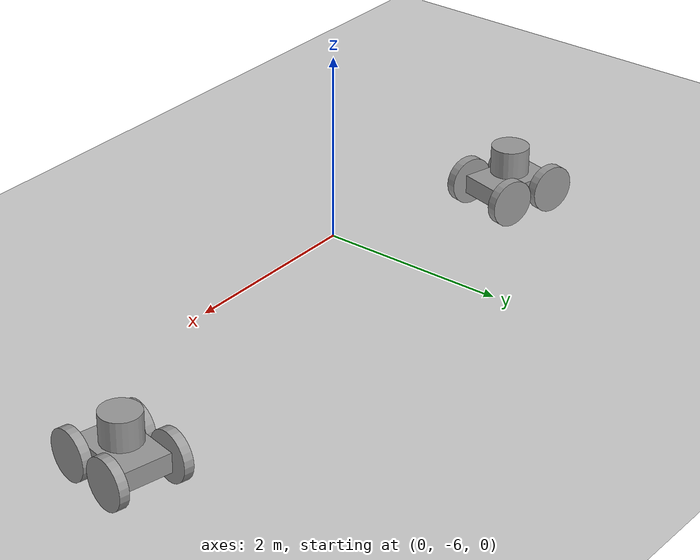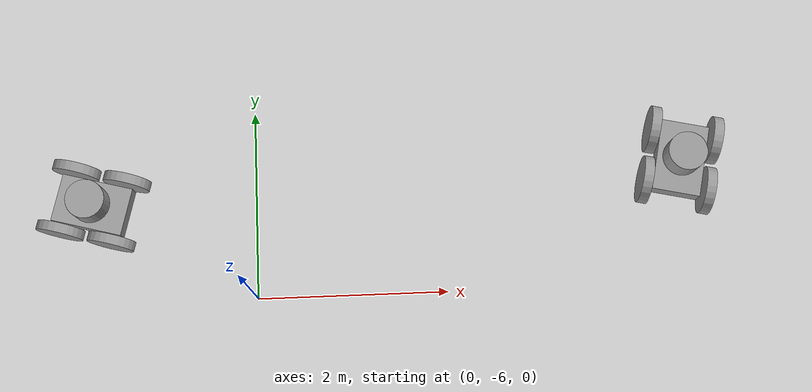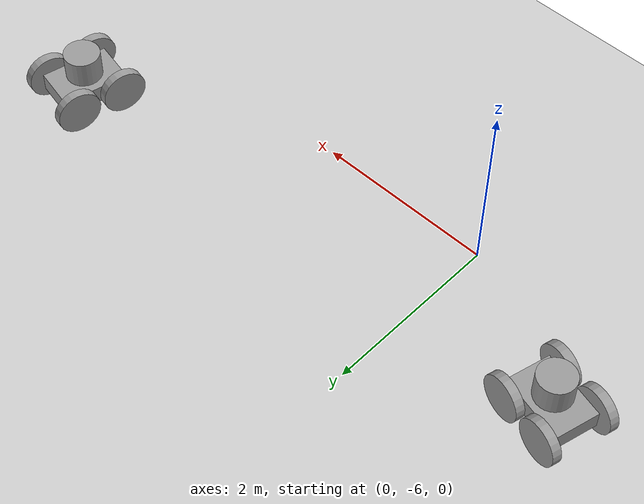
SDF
<sdf version="1.7">
 <world name="default">
  <model name="ground_plane">
   <static>1</static>
   <link name="link">
    <collision name="collision">
     <geometry><plane><normal>0 0 1</normal><size>100 100</size></plane></geometry>
     <surface>
      <contact><collide_bitmask>65535</collide_bitmask></contact>
      <friction><ode><mu>100</mu><mu2>50</mu2></ode></friction>
     </surface>
    </collision>
    <visual name="visual">
     <cast_shadows>0</cast_shadows>
     <geometry><plane><normal>0 0 1</normal><size>100 100</size></plane></geometry>
     <material>
      <script><uri>file://media/materials/scripts/gazebo.material</uri><name>Gazebo/Grey</name></script>
     </material>
    </visual>
   </link>
  </model>
  <model name="TankBot">
   <link name="base">
    <inertial>
     <mass>1</mass>
     <inertia>
      <ixx>0.166667</ixx>
      <ixy>0</ixy>
      <ixz>0</ixz>
      <iyy>0.166667</iyy>
      <iyz>0</iyz>
      <izz>0.166667</izz>
     </inertia>
    </inertial>
    <pose>-0.175062 -0.136231 -0.021827 0 -0 0</pose>
    <visual name="visual">
     <geometry><box><size>0.5 0.75 0.2</size></box></geometry>
     <material>
      <lighting>1</lighting>
      <script><uri>file://media/materials/scripts/gazebo.material</uri><name>Gazebo/Grey</name></script>
      <shader type="pixel"><normal_map>__default__</normal_map></shader>
      <ambient>0.3 0.3 0.3 1</ambient>
      <diffuse>0.7 0.7 0.7 1</diffuse>
      <specular>0.01 0.01 0.01 1</specular>
      <emissive>0 0 0 1</emissive>
     </material>
    </visual>
    <collision name="collision">
     <geometry><box><size>0.5 0.75 0.2</size></box></geometry>
     <surface>
      <friction>
       <ode><mu>1</mu><mu2>1</mu2><fdir1>0 0 0</fdir1><slip1>0</slip1><slip2>0</slip2></ode>
       <torsional>
        <coefficient>1</coefficient>
        <patch_radius>0</patch_radius>
        <surface_radius>0</surface_radius>
        <use_patch_radius>1</use_patch_radius>
        <ode><slip>0</slip></ode>
       </torsional>
      </friction>
      <bounce><restitution_coefficient>0</restitution_coefficient><threshold>1e+06</threshold></bounce>
      <contact>
       <collide_without_contact>0</collide_without_contact>
       <collide_without_contact_bitmask>1</collide_without_contact_bitmask>
       <collide_bitmask>1</collide_bitmask>
       <ode>
        <soft_cfm>0</soft_cfm>
        <soft_erp>0.2</soft_erp>
        <kp>1e+13</kp>
        <kd>1</kd>
        <max_vel>0.01</max_vel>
        <min_depth>0</min_depth>
       </ode>
       <bullet>
        <split_impulse>1</split_impulse>
        <split_impulse_penetration_threshold>-0.01</split_impulse_penetration_threshold>
        <soft_cfm>0</soft_cfm>
        <soft_erp>0.2</soft_erp>
        <kp>1e+13</kp>
        <kd>1</kd>
       </bullet>
      </contact>
     </surface>
    </collision>
   </link>
   <link name="turret">
    <inertial>
     <mass>1</mass>
     <inertia><ixx>0.145833</ixx><ixy>0</ixy><ixz>0</ixz><iyy>0.145833</iyy><iyz>0</iyz><izz>0.125</izz></inertia>
    </inertial>
    <pose>-0.175063 -0.136232 0.268173 0 -0 0</pose>
    <visual name="visual">
     <geometry><cylinder><radius>0.2</radius><length>0.3</length></cylinder></geometry>
     <material>
      <lighting>1</lighting>
      <script><uri>file://media/materials/scripts/gazebo.material</uri><name>Gazebo/Grey</name></script>
      <shader type="pixel"><normal_map>__default__</normal_map></shader>
      <ambient>0.3 0.3 0.3 1</ambient>
      <diffuse>0.7 0.7 0.7 1</diffuse>
      <specular>0.01 0.01 0.01 1</specular>
      <emissive>0 0 0 1</emissive>
     </material>
    </visual>
    <collision name="collision">
     <geometry><cylinder><radius>0.2</radius><length>0.3</length></cylinder></geometry>
     <surface>
      <friction>
       <ode><mu>1</mu><mu2>1</mu2><fdir1>0 0 0</fdir1><slip1>0</slip1><slip2>0</slip2></ode>
       <torsional>
        <coefficient>1</coefficient>
        <patch_radius>0</patch_radius>
        <surface_radius>0</surface_radius>
        <use_patch_radius>1</use_patch_radius>
        <ode><slip>0</slip></ode>
       </torsional>
      </friction>
      <bounce><restitution_coefficient>0</restitution_coefficient><threshold>1e+06</threshold></bounce>
      <contact>
       <collide_without_contact>0</collide_without_contact>
       <collide_without_contact_bitmask>1</collide_without_contact_bitmask>
       <collide_bitmask>1</collide_bitmask>
       <ode>
        <soft_cfm>0</soft_cfm>
        <soft_erp>0.2</soft_erp>
        <kp>1e+13</kp>
        <kd>1</kd>
        <max_vel>0.01</max_vel>
        <min_depth>0</min_depth>
       </ode>
       <bullet>
        <split_impulse>1</split_impulse>
        <split_impulse_penetration_threshold>-0.01</split_impulse_penetration_threshold>
        <soft_cfm>0</soft_cfm>
        <soft_erp>0.2</soft_erp>
        <kp>1e+13</kp>
        <kd>1</kd>
       </bullet>
      </contact>
     </surface>
    </collision>
   </link>
   <link name="wheel1">
    <inertial>
     <mass>1</mass>
     <inertia><ixx>0.145833</ixx><ixy>0</ixy><ixz>0</ixz><iyy>0.145833</iyy><iyz>0</iyz><izz>0.125</izz></inertia>
    </inertial>
    <pose>-0.498422 0.135429 -0.024491 -3.14159 1.56906 -3.14159</pose>
    <visual name="visual">
     <geometry><cylinder><radius>0.25</radius><length>0.1</length></cylinder></geometry>
     <material>
      <lighting>1</lighting>
      <script><uri>file://media/materials/scripts/gazebo.material</uri><name>Gazebo/Grey</name></script>
      <shader type="pixel"><normal_map>__default__</normal_map></shader>
      <ambient>0.3 0.3 0.3 1</ambient>
      <diffuse>0.7 0.7 0.7 1</diffuse>
      <specular>0.01 0.01 0.01 1</specular>
      <emissive>0 0 0 1</emissive>
     </material>
    </visual>
    <collision name="collision">
     <geometry><cylinder><radius>0.25</radius><length>0.1</length></cylinder></geometry>
     <surface>
      <friction>
       <ode><mu>1</mu><mu2>1</mu2><fdir1>0 0 0</fdir1><slip1>0</slip1><slip2>0</slip2></ode>
       <torsional>
        <coefficient>1</coefficient>
        <patch_radius>0</patch_radius>
        <surface_radius>0</surface_radius>
        <use_patch_radius>1</use_patch_radius>
        <ode><slip>0</slip></ode>
       </torsional>
      </friction>
      <bounce><restitution_coefficient>0</restitution_coefficient><threshold>1e+06</threshold></bounce>
      <contact>
       <collide_without_contact>0</collide_without_contact>
       <collide_without_contact_bitmask>1</collide_without_contact_bitmask>
       <collide_bitmask>1</collide_bitmask>
       <ode>
        <soft_cfm>0</soft_cfm>
        <soft_erp>0.2</soft_erp>
        <kp>1e+13</kp>
        <kd>1</kd>
        <max_vel>0.01</max_vel>
        <min_depth>0</min_depth>
       </ode>
       <bullet>
        <split_impulse>1</split_impulse>
        <split_impulse_penetration_threshold>-0.01</split_impulse_penetration_threshold>
        <soft_cfm>0</soft_cfm>
        <soft_erp>0.2</soft_erp>
        <kp>1e+13</kp>
        <kd>1</kd>
       </bullet>
      </contact>
     </surface>
    </collision>
   </link>
   <link name="wheel2">
    <inertial>
     <mass>1</mass>
     <inertia><ixx>0.145833</ixx><ixy>0</ixy><ixz>0</ixz><iyy>0.145833</iyy><iyz>0</iyz><izz>0.125</izz></inertia>
    </inertial>
    <pose>-0.498422 -0.413914 -0.024491 -3.14159 1.56906 -3.14159</pose>
    <visual name="visual">
     <geometry><cylinder><radius>0.25</radius><length>0.1</length></cylinder></geometry>
     <material>
      <lighting>1</lighting>
      <script><uri>file://media/materials/scripts/gazebo.material</uri><name>Gazebo/Grey</name></script>
      <shader type="pixel"><normal_map>__default__</normal_map></shader>
      <ambient>0.3 0.3 0.3 1</ambient>
      <diffuse>0.7 0.7 0.7 1</diffuse>
      <specular>0.01 0.01 0.01 1</specular>
      <emissive>0 0 0 1</emissive>
     </material>
    </visual>
    <collision name="collision">
     <geometry><cylinder><radius>0.25</radius><length>0.1</length></cylinder></geometry>
     <surface>
      <friction>
       <ode><mu>1</mu><mu2>1</mu2><fdir1>0 0 0</fdir1><slip1>0</slip1><slip2>0</slip2></ode>
       <torsional>
        <coefficient>1</coefficient>
        <patch_radius>0</patch_radius>
        <surface_radius>0</surface_radius>
        <use_patch_radius>1</use_patch_radius>
        <ode><slip>0</slip></ode>
       </torsional>
      </friction>
      <bounce><restitution_coefficient>0</restitution_coefficient><threshold>1e+06</threshold></bounce>
      <contact>
       <collide_without_contact>0</collide_without_contact>
       <collide_without_contact_bitmask>1</collide_without_contact_bitmask>
       <collide_bitmask>1</collide_bitmask>
       <ode>
        <soft_cfm>0</soft_cfm>
        <soft_erp>0.2</soft_erp>
        <kp>1e+13</kp>
        <kd>1</kd>
        <max_vel>0.01</max_vel>
        <min_depth>0</min_depth>
       </ode>
       <bullet>
        <split_impulse>1</split_impulse>
        <split_impulse_penetration_threshold>-0.01</split_impulse_penetration_threshold>
        <soft_cfm>0</soft_cfm>
        <soft_erp>0.2</soft_erp>
        <kp>1e+13</kp>
        <kd>1</kd>
       </bullet>
      </contact>
     </surface>
    </collision>
   </link>
   <link name="wheel3">
    <inertial>
     <mass>1</mass>
     <inertia><ixx>0.145833</ixx><ixy>0</ixy><ixz>0</ixz><iyy>0.145833</iyy><iyz>0</iyz><izz>0.125</izz></inertia>
    </inertial>
    <pose>0.155193 0.135429 -0.024491 -3.14159 1.56906 -3.14159</pose>
    <visual name="visual">
     <geometry><cylinder><radius>0.25</radius><length>0.1</length></cylinder></geometry>
     <material>
      <lighting>1</lighting>
      <script><uri>file://media/materials/scripts/gazebo.material</uri><name>Gazebo/Grey</name></script>
      <shader type="pixel"><normal_map>__default__</normal_map></shader>
      <ambient>0.3 0.3 0.3 1</ambient>
      <diffuse>0.7 0.7 0.7 1</diffuse>
      <specular>0.01 0.01 0.01 1</specular>
      <emissive>0 0 0 1</emissive>
     </material>
    </visual>
    <collision name="collision">
     <geometry><cylinder><radius>0.25</radius><length>0.1</length></cylinder></geometry>
     <surface>
      <friction>
       <ode><mu>1</mu><mu2>1</mu2><fdir1>0 0 0</fdir1><slip1>0</slip1><slip2>0</slip2></ode>
       <torsional>
        <coefficient>1</coefficient>
        <patch_radius>0</patch_radius>
        <surface_radius>0</surface_radius>
        <use_patch_radius>1</use_patch_radius>
        <ode><slip>0</slip></ode>
       </torsional>
      </friction>
      <bounce><restitution_coefficient>0</restitution_coefficient><threshold>1e+06</threshold></bounce>
      <contact>
       <collide_without_contact>0</collide_without_contact>
       <collide_without_contact_bitmask>1</collide_without_contact_bitmask>
       <collide_bitmask>1</collide_bitmask>
       <ode>
        <soft_cfm>0</soft_cfm>
        <soft_erp>0.2</soft_erp>
        <kp>1e+13</kp>
        <kd>1</kd>
        <max_vel>0.01</max_vel>
        <min_depth>0</min_depth>
       </ode>
       <bullet>
        <split_impulse>1</split_impulse>
        <split_impulse_penetration_threshold>-0.01</split_impulse_penetration_threshold>
        <soft_cfm>0</soft_cfm>
        <soft_erp>0.2</soft_erp>
        <kp>1e+13</kp>
        <kd>1</kd>
       </bullet>
      </contact>
     </surface>
    </collision>
   </link>
   <link name="wheel4">
    <inertial>
     <mass>1</mass>
     <inertia><ixx>0.145833</ixx><ixy>0</ixy><ixz>0</ixz><iyy>0.145833</iyy><iyz>0</iyz><izz>0.125</izz></inertia>
    </inertial>
    <pose>0.155193 -0.413914 -0.024538 -3.14159 1.56906 -3.14159</pose>
    <visual name="visual">
     <geometry><cylinder><radius>0.25</radius><length>0.1</length></cylinder></geometry>
     <material>
      <lighting>1</lighting>
      <script><uri>file://media/materials/scripts/gazebo.material</uri><name>Gazebo/Grey</name></script>
      <shader type="pixel"><normal_map>__default__</normal_map></shader>
      <ambient>0.3 0.3 0.3 1</ambient>
      <diffuse>0.7 0.7 0.7 1</diffuse>
      <specular>0.01 0.01 0.01 1</specular>
      <emissive>0 0 0 1</emissive>
     </material>
    </visual>
    <collision name="collision">
     <geometry><cylinder><radius>0.25</radius><length>0.1</length></cylinder></geometry>
     <surface>
      <friction>
       <ode><mu>1</mu><mu2>1</mu2><fdir1>0 0 0</fdir1><slip1>0</slip1><slip2>0</slip2></ode>
       <torsional>
        <coefficient>1</coefficient>
        <patch_radius>0</patch_radius>
        <surface_radius>0</surface_radius>
        <use_patch_radius>1</use_patch_radius>
        <ode><slip>0</slip></ode>
       </torsional>
      </friction>
      <bounce><restitution_coefficient>0</restitution_coefficient><threshold>1e+06</threshold></bounce>
      <contact>
       <collide_without_contact>0</collide_without_contact>
       <collide_without_contact_bitmask>1</collide_without_contact_bitmask>
       <collide_bitmask>1</collide_bitmask>
       <ode>
        <soft_cfm>0</soft_cfm>
        <soft_erp>0.2</soft_erp>
        <kp>1e+13</kp>
        <kd>1</kd>
        <max_vel>0.01</max_vel>
        <min_depth>0</min_depth>
       </ode>
       <bullet>
        <split_impulse>1</split_impulse>
        <split_impulse_penetration_threshold>-0.01</split_impulse_penetration_threshold>
        <soft_cfm>0</soft_cfm>
        <soft_erp>0.2</soft_erp>
        <kp>1e+13</kp>
        <kd>1</kd>
       </bullet>
      </contact>
     </surface>
    </collision>
   </link>
   <joint name="Turret_axis" type="revolute">
    <parent>base</parent>
    <child>turret</child>
    <axis>
     <xyz>0 0 1</xyz>
     <limit>
      <lower>-1.79769e+308</lower>
      <upper>1.79769e+308</upper>
      <effort>-1</effort>
      <velocity>-1</velocity>
     </limit>
     <dynamics>
      <spring_reference>0</spring_reference>
      <spring_stiffness>0</spring_stiffness>
      <damping>0</damping>
      <friction>0</friction>
     </dynamics>
    </axis>
    <physics>
     <ode><limit><cfm>0</cfm><erp>0.2</erp></limit><suspension><cfm>0</cfm><erp>0.2</erp></suspension></ode>
    </physics>
   </joint>
   <joint name="Wheel1_axis" type="revolute">
    <parent>base</parent>
    <child>wheel1</child>
    <axis>
     <xyz>0 0 1</xyz>
     <limit>
      <lower>-1.79769e+308</lower>
      <upper>1.79769e+308</upper>
      <effort>-1</effort>
      <velocity>-1</velocity>
     </limit>
     <dynamics>
      <spring_reference>0</spring_reference>
      <spring_stiffness>0</spring_stiffness>
      <damping>0</damping>
      <friction>0</friction>
     </dynamics>
    </axis>
    <physics>
     <ode><limit><cfm>0</cfm><erp>0.2</erp></limit><suspension><cfm>0</cfm><erp>0.2</erp></suspension></ode>
    </physics>
   </joint>
   <joint name="Wheel2_axis" type="revolute">
    <parent>base</parent>
    <child>wheel2</child>
    <axis>
     <xyz>0 0 1</xyz>
     <limit>
      <lower>-1.79769e+308</lower>
      <upper>1.79769e+308</upper>
      <effort>-1</effort>
      <velocity>-1</velocity>
     </limit>
     <dynamics>
      <spring_reference>0</spring_reference>
      <spring_stiffness>0</spring_stiffness>
      <damping>0</damping>
      <friction>0</friction>
     </dynamics>
    </axis>
    <physics>
     <ode><limit><cfm>0</cfm><erp>0.2</erp></limit><suspension><cfm>0</cfm><erp>0.2</erp></suspension></ode>
    </physics>
   </joint>
   <joint name="Wheel3_axis" type="revolute">
    <parent>base</parent>
    <child>wheel3</child>
    <axis>
     <xyz>0 0 1</xyz>
     <limit>
      <lower>-1.79769e+308</lower>
      <upper>1.79769e+308</upper>
      <effort>-1</effort>
      <velocity>-1</velocity>
     </limit>
     <dynamics>
      <spring_reference>0</spring_reference>
      <spring_stiffness>0</spring_stiffness>
      <damping>0</damping>
      <friction>0</friction>
     </dynamics>
    </axis>
    <physics>
     <ode><limit><cfm>0</cfm><erp>0.2</erp></limit><suspension><cfm>0</cfm><erp>0.2</erp></suspension></ode>
    </physics>
   </joint>
   <joint name="Wheel4_axis" type="revolute">
    <parent>base</parent>
    <child>wheel4</child>
    <axis>
     <xyz>0 0 1</xyz>
     <limit>
      <lower>-1.79769e+308</lower>
      <upper>1.79769e+308</upper>
      <effort>-1</effort>
      <velocity>-1</velocity>
     </limit>
     <dynamics>
      <spring_reference>0</spring_reference>
      <spring_stiffness>0</spring_stiffness>
      <damping>0</damping>
      <friction>0</friction>
     </dynamics>
    </axis>
    <physics>
     <ode><limit><cfm>0</cfm><erp>0.2</erp></limit><suspension><cfm>0</cfm><erp>0.2</erp></suspension></ode>
    </physics>
   </joint>
   <static>0</static>
   <pose>4.68593 -4.62261 0.274608 -9e-06 -6.4e-05 -0.217052</pose>
  </model>
  <model name="TankBot_0">
   <link name="base">
    <inertial>
     <mass>1</mass>
     <inertia>
      <ixx>0.166667</ixx>
      <ixy>0</ixy>
      <ixz>0</ixz>
      <iyy>0.166667</iyy>
      <iyz>0</iyz>
      <izz>0.166667</izz>
     </inertia>
    </inertial>
    <pose>-0.175062 -0.136231 -0.021827 0 -0 0</pose>
    <visual name="visual">
     <geometry><box><size>0.5 0.75 0.2</size></box></geometry>
     <material>
      <lighting>1</lighting>
      <script><uri>file://media/materials/scripts/gazebo.material</uri><name>Gazebo/Grey</name></script>
      <shader type="pixel"><normal_map>__default__</normal_map></shader>
      <ambient>0.3 0.3 0.3 1</ambient>
      <diffuse>0.7 0.7 0.7 1</diffuse>
      <specular>0.01 0.01 0.01 1</specular>
      <emissive>0 0 0 1</emissive>
     </material>
    </visual>
    <collision name="collision">
     <geometry><box><size>0.5 0.75 0.2</size></box></geometry>
     <surface>
      <friction>
       <ode><mu>1</mu><mu2>1</mu2><fdir1>0 0 0</fdir1><slip1>0</slip1><slip2>0</slip2></ode>
       <torsional>
        <coefficient>1</coefficient>
        <patch_radius>0</patch_radius>
        <surface_radius>0</surface_radius>
        <use_patch_radius>1</use_patch_radius>
        <ode><slip>0</slip></ode>
       </torsional>
      </friction>
      <bounce><restitution_coefficient>0</restitution_coefficient><threshold>1e+06</threshold></bounce>
      <contact>
       <collide_without_contact>0</collide_without_contact>
       <collide_without_contact_bitmask>1</collide_without_contact_bitmask>
       <collide_bitmask>1</collide_bitmask>
       <ode>
        <soft_cfm>0</soft_cfm>
        <soft_erp>0.2</soft_erp>
        <kp>1e+13</kp>
        <kd>1</kd>
        <max_vel>0.01</max_vel>
        <min_depth>0</min_depth>
       </ode>
       <bullet>
        <split_impulse>1</split_impulse>
        <split_impulse_penetration_threshold>-0.01</split_impulse_penetration_threshold>
        <soft_cfm>0</soft_cfm>
        <soft_erp>0.2</soft_erp>
        <kp>1e+13</kp>
        <kd>1</kd>
       </bullet>
      </contact>
     </surface>
    </collision>
   </link>
   <link name="turret">
    <inertial>
     <mass>1</mass>
     <inertia><ixx>0.145833</ixx><ixy>0</ixy><ixz>0</ixz><iyy>0.145833</iyy><iyz>0</iyz><izz>0.125</izz></inertia>
    </inertial>
    <pose>-0.175063 -0.136232 0.268173 0 -0 0</pose>
    <visual name="visual">
     <geometry><cylinder><radius>0.2</radius><length>0.3</length></cylinder></geometry>
     <material>
      <lighting>1</lighting>
      <script><uri>file://media/materials/scripts/gazebo.material</uri><name>Gazebo/Grey</name></script>
      <shader type="pixel"><normal_map>__default__</normal_map></shader>
      <ambient>0.3 0.3 0.3 1</ambient>
      <diffuse>0.7 0.7 0.7 1</diffuse>
      <specular>0.01 0.01 0.01 1</specular>
      <emissive>0 0 0 1</emissive>
     </material>
    </visual>
    <collision name="collision">
     <geometry><cylinder><radius>0.2</radius><length>0.3</length></cylinder></geometry>
     <surface>
      <friction>
       <ode><mu>1</mu><mu2>1</mu2><fdir1>0 0 0</fdir1><slip1>0</slip1><slip2>0</slip2></ode>
       <torsional>
        <coefficient>1</coefficient>
        <patch_radius>0</patch_radius>
        <surface_radius>0</surface_radius>
        <use_patch_radius>1</use_patch_radius>
        <ode><slip>0</slip></ode>
       </torsional>
      </friction>
      <bounce><restitution_coefficient>0</restitution_coefficient><threshold>1e+06</threshold></bounce>
      <contact>
       <collide_without_contact>0</collide_without_contact>
       <collide_without_contact_bitmask>1</collide_without_contact_bitmask>
       <collide_bitmask>1</collide_bitmask>
       <ode>
        <soft_cfm>0</soft_cfm>
        <soft_erp>0.2</soft_erp>
        <kp>1e+13</kp>
        <kd>1</kd>
        <max_vel>0.01</max_vel>
        <min_depth>0</min_depth>
       </ode>
       <bullet>
        <split_impulse>1</split_impulse>
        <split_impulse_penetration_threshold>-0.01</split_impulse_penetration_threshold>
        <soft_cfm>0</soft_cfm>
        <soft_erp>0.2</soft_erp>
        <kp>1e+13</kp>
        <kd>1</kd>
       </bullet>
      </contact>
     </surface>
    </collision>
   </link>
   <link name="wheel1">
    <inertial>
     <mass>1</mass>
     <inertia><ixx>0.145833</ixx><ixy>0</ixy><ixz>0</ixz><iyy>0.145833</iyy><iyz>0</iyz><izz>0.125</izz></inertia>
    </inertial>
    <pose>-0.498422 0.135429 -0.024491 -3.14159 1.56906 -3.14159</pose>
    <visual name="visual">
     <geometry><cylinder><radius>0.25</radius><length>0.1</length></cylinder></geometry>
     <material>
      <lighting>1</lighting>
      <script><uri>file://media/materials/scripts/gazebo.material</uri><name>Gazebo/Grey</name></script>
      <shader type="pixel"><normal_map>__default__</normal_map></shader>
      <ambient>0.3 0.3 0.3 1</ambient>
      <diffuse>0.7 0.7 0.7 1</diffuse>
      <specular>0.01 0.01 0.01 1</specular>
      <emissive>0 0 0 1</emissive>
     </material>
    </visual>
    <collision name="collision">
     <geometry><cylinder><radius>0.25</radius><length>0.1</length></cylinder></geometry>
     <surface>
      <friction>
       <ode><mu>1</mu><mu2>1</mu2><fdir1>0 0 0</fdir1><slip1>0</slip1><slip2>0</slip2></ode>
       <torsional>
        <coefficient>1</coefficient>
        <patch_radius>0</patch_radius>
        <surface_radius>0</surface_radius>
        <use_patch_radius>1</use_patch_radius>
        <ode><slip>0</slip></ode>
       </torsional>
      </friction>
      <bounce><restitution_coefficient>0</restitution_coefficient><threshold>1e+06</threshold></bounce>
      <contact>
       <collide_without_contact>0</collide_without_contact>
       <collide_without_contact_bitmask>1</collide_without_contact_bitmask>
       <collide_bitmask>1</collide_bitmask>
       <ode>
        <soft_cfm>0</soft_cfm>
        <soft_erp>0.2</soft_erp>
        <kp>1e+13</kp>
        <kd>1</kd>
        <max_vel>0.01</max_vel>
        <min_depth>0</min_depth>
       </ode>
       <bullet>
        <split_impulse>1</split_impulse>
        <split_impulse_penetration_threshold>-0.01</split_impulse_penetration_threshold>
        <soft_cfm>0</soft_cfm>
        <soft_erp>0.2</soft_erp>
        <kp>1e+13</kp>
        <kd>1</kd>
       </bullet>
      </contact>
     </surface>
    </collision>
   </link>
   <link name="wheel2">
    <inertial>
     <mass>1</mass>
     <inertia><ixx>0.145833</ixx><ixy>0</ixy><ixz>0</ixz><iyy>0.145833</iyy><iyz>0</iyz><izz>0.125</izz></inertia>
    </inertial>
    <pose>-0.498422 -0.413914 -0.024491 -3.14159 1.56906 -3.14159</pose>
    <visual name="visual">
     <geometry><cylinder><radius>0.25</radius><length>0.1</length></cylinder></geometry>
     <material>
      <lighting>1</lighting>
      <script><uri>file://media/materials/scripts/gazebo.material</uri><name>Gazebo/Grey</name></script>
      <shader type="pixel"><normal_map>__default__</normal_map></shader>
      <ambient>0.3 0.3 0.3 1</ambient>
      <diffuse>0.7 0.7 0.7 1</diffuse>
      <specular>0.01 0.01 0.01 1</specular>
      <emissive>0 0 0 1</emissive>
     </material>
    </visual>
    <collision name="collision">
     <geometry><cylinder><radius>0.25</radius><length>0.1</length></cylinder></geometry>
     <surface>
      <friction>
       <ode><mu>1</mu><mu2>1</mu2><fdir1>0 0 0</fdir1><slip1>0</slip1><slip2>0</slip2></ode>
       <torsional>
        <coefficient>1</coefficient>
        <patch_radius>0</patch_radius>
        <surface_radius>0</surface_radius>
        <use_patch_radius>1</use_patch_radius>
        <ode><slip>0</slip></ode>
       </torsional>
      </friction>
      <bounce><restitution_coefficient>0</restitution_coefficient><threshold>1e+06</threshold></bounce>
      <contact>
       <collide_without_contact>0</collide_without_contact>
       <collide_without_contact_bitmask>1</collide_without_contact_bitmask>
       <collide_bitmask>1</collide_bitmask>
       <ode>
        <soft_cfm>0</soft_cfm>
        <soft_erp>0.2</soft_erp>
        <kp>1e+13</kp>
        <kd>1</kd>
        <max_vel>0.01</max_vel>
        <min_depth>0</min_depth>
       </ode>
       <bullet>
        <split_impulse>1</split_impulse>
        <split_impulse_penetration_threshold>-0.01</split_impulse_penetration_threshold>
        <soft_cfm>0</soft_cfm>
        <soft_erp>0.2</soft_erp>
        <kp>1e+13</kp>
        <kd>1</kd>
       </bullet>
      </contact>
     </surface>
    </collision>
   </link>
   <link name="wheel3">
    <inertial>
     <mass>1</mass>
     <inertia><ixx>0.145833</ixx><ixy>0</ixy><ixz>0</ixz><iyy>0.145833</iyy><iyz>0</iyz><izz>0.125</izz></inertia>
    </inertial>
    <pose>0.155193 0.135429 -0.024491 -3.14159 1.56906 -3.14159</pose>
    <visual name="visual">
     <geometry><cylinder><radius>0.25</radius><length>0.1</length></cylinder></geometry>
     <material>
      <lighting>1</lighting>
      <script><uri>file://media/materials/scripts/gazebo.material</uri><name>Gazebo/Grey</name></script>
      <shader type="pixel"><normal_map>__default__</normal_map></shader>
      <ambient>0.3 0.3 0.3 1</ambient>
      <diffuse>0.7 0.7 0.7 1</diffuse>
      <specular>0.01 0.01 0.01 1</specular>
      <emissive>0 0 0 1</emissive>
     </material>
    </visual>
    <collision name="collision">
     <geometry><cylinder><radius>0.25</radius><length>0.1</length></cylinder></geometry>
     <surface>
      <friction>
       <ode><mu>1</mu><mu2>1</mu2><fdir1>0 0 0</fdir1><slip1>0</slip1><slip2>0</slip2></ode>
       <torsional>
        <coefficient>1</coefficient>
        <patch_radius>0</patch_radius>
        <surface_radius>0</surface_radius>
        <use_patch_radius>1</use_patch_radius>
        <ode><slip>0</slip></ode>
       </torsional>
      </friction>
      <bounce><restitution_coefficient>0</restitution_coefficient><threshold>1e+06</threshold></bounce>
      <contact>
       <collide_without_contact>0</collide_without_contact>
       <collide_without_contact_bitmask>1</collide_without_contact_bitmask>
       <collide_bitmask>1</collide_bitmask>
       <ode>
        <soft_cfm>0</soft_cfm>
        <soft_erp>0.2</soft_erp>
        <kp>1e+13</kp>
        <kd>1</kd>
        <max_vel>0.01</max_vel>
        <min_depth>0</min_depth>
       </ode>
       <bullet>
        <split_impulse>1</split_impulse>
        <split_impulse_penetration_threshold>-0.01</split_impulse_penetration_threshold>
        <soft_cfm>0</soft_cfm>
        <soft_erp>0.2</soft_erp>
        <kp>1e+13</kp>
        <kd>1</kd>
       </bullet>
      </contact>
     </surface>
    </collision>
   </link>
   <link name="wheel4">
    <inertial>
     <mass>1</mass>
     <inertia><ixx>0.145833</ixx><ixy>0</ixy><ixz>0</ixz><iyy>0.145833</iyy><iyz>0</iyz><izz>0.125</izz></inertia>
    </inertial>
    <pose>0.155193 -0.413914 -0.024538 -3.14159 1.56906 -3.14159</pose>
    <visual name="visual">
     <geometry><cylinder><radius>0.25</radius><length>0.1</length></cylinder></geometry>
     <material>
      <lighting>1</lighting>
      <script><uri>file://media/materials/scripts/gazebo.material</uri><name>Gazebo/Grey</name></script>
      <shader type="pixel"><normal_map>__default__</normal_map></shader>
      <ambient>0.3 0.3 0.3 1</ambient>
      <diffuse>0.7 0.7 0.7 1</diffuse>
      <specular>0.01 0.01 0.01 1</specular>
      <emissive>0 0 0 1</emissive>
     </material>
    </visual>
    <collision name="collision">
     <geometry><cylinder><radius>0.25</radius><length>0.1</length></cylinder></geometry>
     <surface>
      <friction>
       <ode><mu>1</mu><mu2>1</mu2><fdir1>0 0 0</fdir1><slip1>0</slip1><slip2>0</slip2></ode>
       <torsional>
        <coefficient>1</coefficient>
        <patch_radius>0</patch_radius>
        <surface_radius>0</surface_radius>
        <use_patch_radius>1</use_patch_radius>
        <ode><slip>0</slip></ode>
       </torsional>
      </friction>
      <bounce><restitution_coefficient>0</restitution_coefficient><threshold>1e+06</threshold></bounce>
      <contact>
       <collide_without_contact>0</collide_without_contact>
       <collide_without_contact_bitmask>1</collide_without_contact_bitmask>
       <collide_bitmask>1</collide_bitmask>
       <ode>
        <soft_cfm>0</soft_cfm>
        <soft_erp>0.2</soft_erp>
        <kp>1e+13</kp>
        <kd>1</kd>
        <max_vel>0.01</max_vel>
        <min_depth>0</min_depth>
       </ode>
       <bullet>
        <split_impulse>1</split_impulse>
        <split_impulse_penetration_threshold>-0.01</split_impulse_penetration_threshold>
        <soft_cfm>0</soft_cfm>
        <soft_erp>0.2</soft_erp>
        <kp>1e+13</kp>
        <kd>1</kd>
       </bullet>
      </contact>
     </surface>
    </collision>
   </link>
   <joint name="Turret_axis" type="revolute">
    <parent>base</parent>
    <child>turret</child>
    <axis>
     <xyz>0 0 1</xyz>
     <limit>
      <lower>-1.79769e+308</lower>
      <upper>1.79769e+308</upper>
      <effort>-1</effort>
      <velocity>-1</velocity>
     </limit>
     <dynamics>
      <spring_reference>0</spring_reference>
      <spring_stiffness>0</spring_stiffness>
      <damping>0</damping>
      <friction>0</friction>
     </dynamics>
    </axis>
    <physics>
     <ode><limit><cfm>0</cfm><erp>0.2</erp></limit><suspension><cfm>0</cfm><erp>0.2</erp></suspension></ode>
    </physics>
   </joint>
   <joint name="Wheel1_axis" type="revolute">
    <parent>base</parent>
    <child>wheel1</child>
    <axis>
     <xyz>0 0 1</xyz>
     <limit>
      <lower>-1.79769e+308</lower>
      <upper>1.79769e+308</upper>
      <effort>-1</effort>
      <velocity>-1</velocity>
     </limit>
     <dynamics>
      <spring_reference>0</spring_reference>
      <spring_stiffness>0</spring_stiffness>
      <damping>0</damping>
      <friction>0</friction>
     </dynamics>
    </axis>
    <physics>
     <ode><limit><cfm>0</cfm><erp>0.2</erp></limit><suspension><cfm>0</cfm><erp>0.2</erp></suspension></ode>
    </physics>
   </joint>
   <joint name="Wheel2_axis" type="revolute">
    <parent>base</parent>
    <child>wheel2</child>
    <axis>
     <xyz>0 0 1</xyz>
     <limit>
      <lower>-1.79769e+308</lower>
      <upper>1.79769e+308</upper>
      <effort>-1</effort>
      <velocity>-1</velocity>
     </limit>
     <dynamics>
      <spring_reference>0</spring_reference>
      <spring_stiffness>0</spring_stiffness>
      <damping>0</damping>
      <friction>0</friction>
     </dynamics>
    </axis>
    <physics>
     <ode><limit><cfm>0</cfm><erp>0.2</erp></limit><suspension><cfm>0</cfm><erp>0.2</erp></suspension></ode>
    </physics>
   </joint>
   <joint name="Wheel3_axis" type="revolute">
    <parent>base</parent>
    <child>wheel3</child>
    <axis>
     <xyz>0 0 1</xyz>
     <limit>
      <lower>-1.79769e+308</lower>
      <upper>1.79769e+308</upper>
      <effort>-1</effort>
      <velocity>-1</velocity>
     </limit>
     <dynamics>
      <spring_reference>0</spring_reference>
      <spring_stiffness>0</spring_stiffness>
      <damping>0</damping>
      <friction>0</friction>
     </dynamics>
    </axis>
    <physics>
     <ode><limit><cfm>0</cfm><erp>0.2</erp></limit><suspension><cfm>0</cfm><erp>0.2</erp></suspension></ode>
    </physics>
   </joint>
   <joint name="Wheel4_axis" type="revolute">
    <parent>base</parent>
    <child>wheel4</child>
    <axis>
     <xyz>0 0 1</xyz>
     <limit>
      <lower>-1.79769e+308</lower>
      <upper>1.79769e+308</upper>
      <effort>-1</effort>
      <velocity>-1</velocity>
     </limit>
     <dynamics>
      <spring_reference>0</spring_reference>
      <spring_stiffness>0</spring_stiffness>
      <damping>0</damping>
      <friction>0</friction>
     </dynamics>
    </axis>
    <physics>
     <ode><limit><cfm>0</cfm><erp>0.2</erp></limit><suspension><cfm>0</cfm><erp>0.2</erp></suspension></ode>
    </physics>
   </joint>
   <static>0</static>
   <pose>-1.78107 -4.78596 0.274603 -1.3e-05 -7.6e-05 1.31605</pose>
  </model>
 </world>
</sdf>
